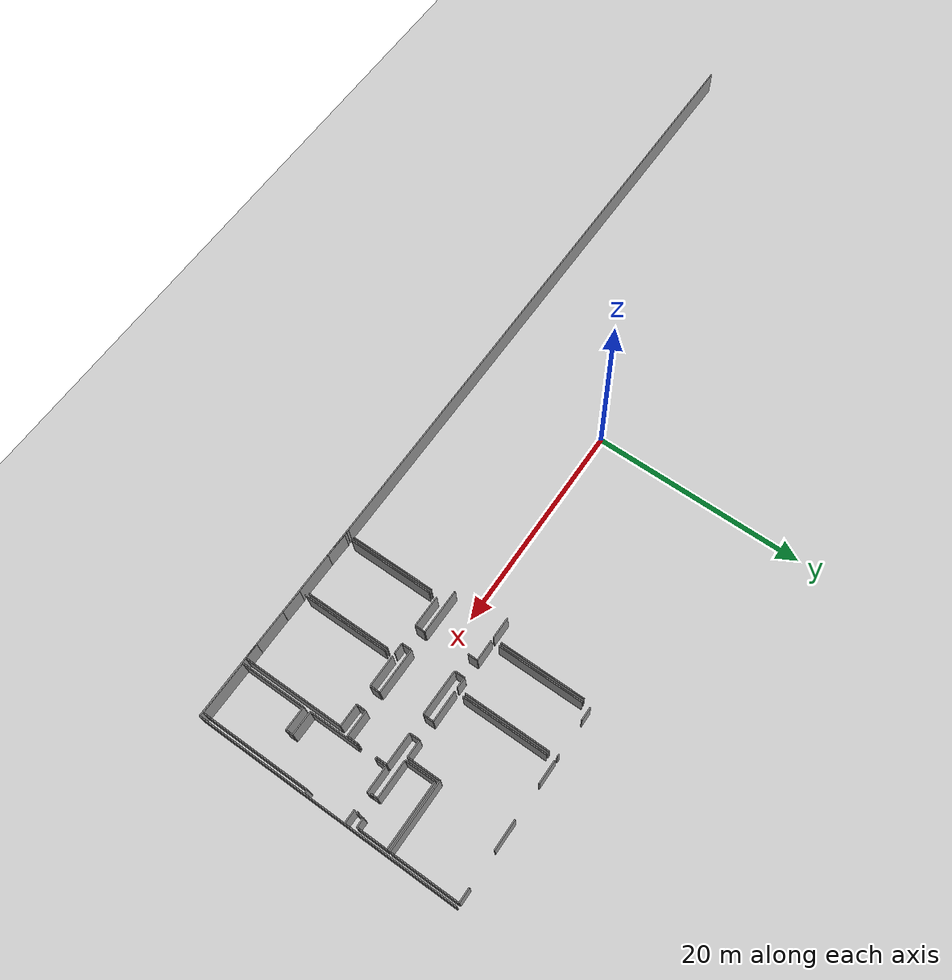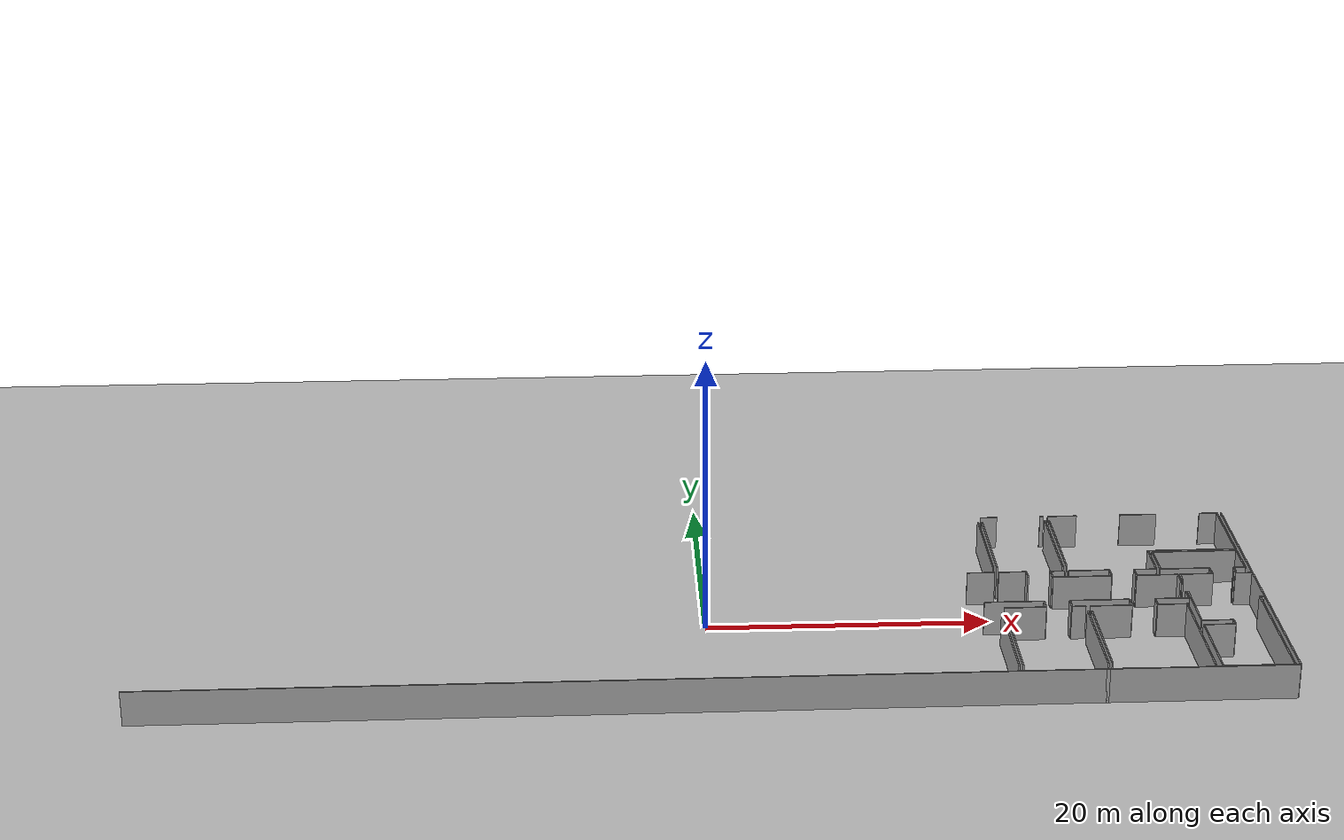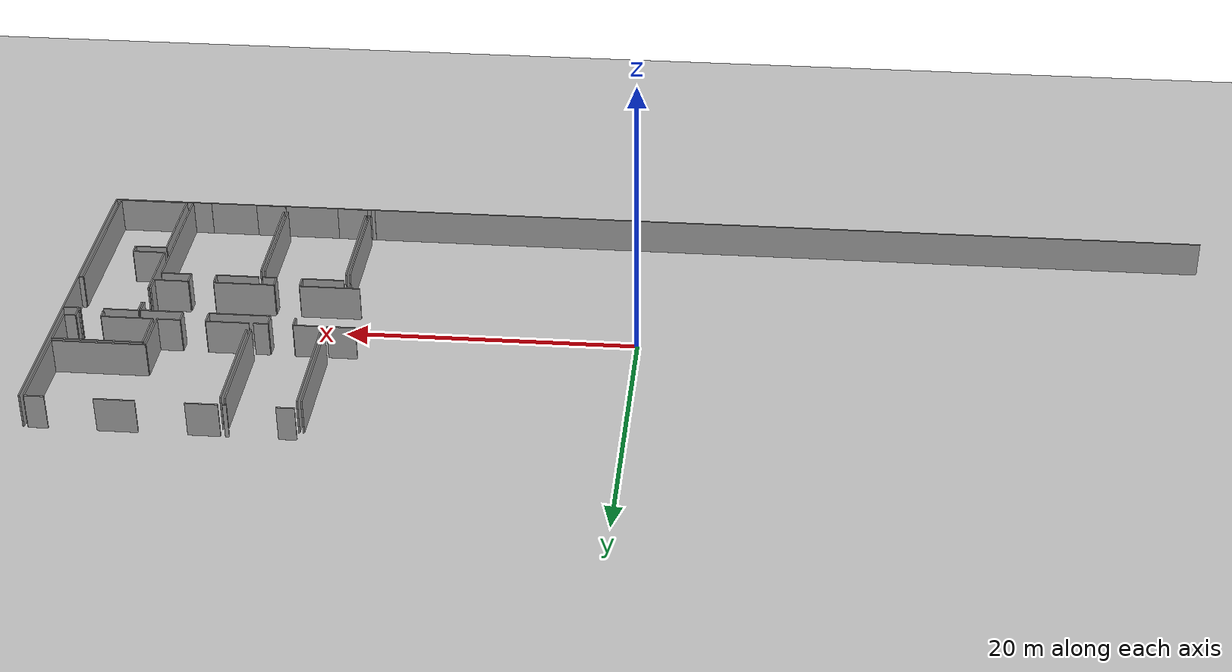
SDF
<sdf version="1.6">
 <world name="default">
  <model name="ground_plane">
   <static>1</static>
   <link name="link">
    <collision name="collision">
     <geometry><plane><normal>0 0 1</normal><size>100 100</size></plane></geometry>
     <surface><friction><ode><mu>100</mu><mu2>50</mu2></ode></friction></surface>
    </collision>
    <visual name="visual">
     <cast_shadows>0</cast_shadows>
     <geometry><plane><normal>0 0 1</normal><size>100 100</size></plane></geometry>
     <material>
      <script><uri>file://media/materials/scripts/gazebo.material</uri><name>Gazebo/Grey</name></script>
     </material>
    </visual>
   </link>
  </model>
  <model name="50052753">
   <static>1</static>
   <link name="Wall_146">
    <collision name="Wall_146_Collision">
     <geometry><box><size>8.08255583111 0.1 2.5</size></box></geometry>
     <pose>4.04127791555 0 1.25 0 0 0</pose>
    </collision>
    <visual name="Wall_146_Visual">
     <pose>4.04127791555 0 1.25 0 0 0</pose>
     <geometry><box><size>8.08255583111 0.1 2.5</size></box></geometry>
     <material>
      <script><uri>file://media/materials/scripts/gazebo.material</uri><name>Gazebo/Grey</name></script>
      <ambient>1 1 1 1</ambient>
     </material>
    </visual>
    <pose>59.7440109601 -0.784077430976 0 0 0 -1.57079632679</pose>
   </link>
   <link name="Wall_147">
    <collision name="Wall_147_Collision">
     <geometry><box><size>1.97662102078 0.1 2.5</size></box></geometry>
     <pose>0.988310510392 0 1.25 0 0 0</pose>
    </collision>
    <visual name="Wall_147_Visual">
     <pose>0.988310510392 0 1.25 0 0 0</pose>
     <geometry><box><size>1.97662102078 0.1 2.5</size></box></geometry>
     <material>
      <script><uri>file://media/materials/scripts/gazebo.material</uri><name>Gazebo/Grey</name></script>
      <ambient>1 1 1 1</ambient>
     </material>
    </visual>
    <pose>59.7440109601 -9.62090027464 0 0 0 3.14159265359</pose>
   </link>
   <link name="Wall_151">
    <collision name="Wall_151_Collision">
     <geometry><box><size>8.1108440154 0.1 2.5</size></box></geometry>
     <pose>4.0554220077 0 1.25 0 0 0</pose>
    </collision>
    <visual name="Wall_151_Visual">
     <pose>4.0554220077 0 1.25 0 0 0</pose>
     <geometry><box><size>8.1108440154 0.1 2.5</size></box></geometry>
     <material>
      <script><uri>file://media/materials/scripts/gazebo.material</uri><name>Gazebo/Grey</name></script>
      <ambient>1 1 1 1</ambient>
     </material>
    </visual>
    <pose>60.0375484419 -8.86878976044 0 0 0 1.57079632679</pose>
   </link>
   <link name="Wall_152">
    <collision name="Wall_152_Collision">
     <geometry><box><size>1.2185484229 0.1 2.5</size></box></geometry>
     <pose>0.609274211451 0 1.25 0 0 0</pose>
    </collision>
    <visual name="Wall_152_Visual">
     <pose>0.609274211451 0 1.25 0 0 0</pose>
     <geometry><box><size>1.2185484229 0.1 2.5</size></box></geometry>
     <material>
      <script><uri>file://media/materials/scripts/gazebo.material</uri><name>Gazebo/Grey</name></script>
      <ambient>1 1 1 1</ambient>
     </material>
    </visual>
    <pose>60.0375484419 -0.0181399567432 0 0 0 0.0</pose>
   </link>
   <link name="Wall_153">
    <collision name="Wall_153_Collision">
     <geometry><box><size>0.261063153689 0.1 2.5</size></box></geometry>
     <pose>0.130531576844 0 1.25 0 0 0</pose>
    </collision>
    <visual name="Wall_153_Visual">
     <pose>0.130531576844 0 1.25 0 0 0</pose>
     <geometry><box><size>0.261063153689 0.1 2.5</size></box></geometry>
     <material>
      <script><uri>file://media/materials/scripts/gazebo.material</uri><name>Gazebo/Grey</name></script>
      <ambient>1 1 1 1</ambient>
     </material>
    </visual>
    <pose>64.4836137838 -0.0181399567432 0 0 0 0.0</pose>
   </link>
   <link name="Wall_154">
    <collision name="Wall_154_Collision">
     <geometry><box><size>8.08648826928 0.1 2.5</size></box></geometry>
     <pose>4.04324413464 0 1.25 0 0 0</pose>
    </collision>
    <visual name="Wall_154_Visual">
     <pose>4.04324413464 0 1.25 0 0 0</pose>
     <geometry><box><size>8.08648826928 0.1 2.5</size></box></geometry>
     <material>
      <script><uri>file://media/materials/scripts/gazebo.material</uri><name>Gazebo/Grey</name></script>
      <ambient>1 1 1 1</ambient>
     </material>
    </visual>
    <pose>64.7446769375 -0.765176357167 0 0 0 -1.57079632679</pose>
   </link>
   <link name="Wall_155">
    <collision name="Wall_155_Collision">
     <geometry><box><size>1.00213747043 0.1 2.5</size></box></geometry>
     <pose>0.501068735214 0 1.25 0 0 0</pose>
    </collision>
    <visual name="Wall_155_Visual">
     <pose>0.501068735214 0 1.25 0 0 0</pose>
     <geometry><box><size>1.00213747043 0.1 2.5</size></box></geometry>
     <material>
      <script><uri>file://media/materials/scripts/gazebo.material</uri><name>Gazebo/Grey</name></script>
      <ambient>1 1 1 1</ambient>
     </material>
    </visual>
    <pose>64.7446769375 -9.62863829814 0 0 0 3.14159265359</pose>
   </link>
   <link name="Wall_156">
    <collision name="Wall_156_Collision">
     <geometry><box><size>0.885559706463 0.1 2.5</size></box></geometry>
     <pose>0.442779853231 0 1.25 0 0 0</pose>
    </collision>
    <visual name="Wall_156_Visual">
     <pose>0.442779853231 0 1.25 0 0 0</pose>
     <geometry><box><size>0.885559706463 0.1 2.5</size></box></geometry>
     <material>
      <script><uri>file://media/materials/scripts/gazebo.material</uri><name>Gazebo/Grey</name></script>
      <ambient>1 1 1 1</ambient>
     </material>
    </visual>
    <pose>63.7425394671 -9.62863829814 0 0 0 -1.57079632679</pose>
   </link>
   <link name="Wall_157">
    <collision name="Wall_157_Collision">
     <geometry><box><size>0.906870984315 0.1 2.5</size></box></geometry>
     <pose>0.453435492157 0 1.25 0 0 0</pose>
    </collision>
    <visual name="Wall_157_Visual">
     <pose>0.453435492157 0 1.25 0 0 0</pose>
     <geometry><box><size>0.906870984315 0.1 2.5</size></box></geometry>
     <material>
      <script><uri>file://media/materials/scripts/gazebo.material</uri><name>Gazebo/Grey</name></script>
      <ambient>1 1 1 1</ambient>
     </material>
    </visual>
    <pose>62.0144231684 -10.5141980046 0 0 0 1.57079632679</pose>
   </link>
   <link name="Wall_158">
    <collision name="Wall_158_Collision">
     <geometry><box><size>1.97698022137 0.1 2.5</size></box></geometry>
     <pose>0.988490110684 0 1.25 0 0 0</pose>
    </collision>
    <visual name="Wall_158_Visual">
     <pose>0.988490110684 0 1.25 0 0 0</pose>
     <geometry><box><size>1.97698022137 0.1 2.5</size></box></geometry>
     <material>
      <script><uri>file://media/materials/scripts/gazebo.material</uri><name>Gazebo/Grey</name></script>
      <ambient>1 1 1 1</ambient>
     </material>
    </visual>
    <pose>62.0144231684 -9.60732702029 0 0 0 -3.13126191229</pose>
   </link>
   <link name="Wall_159">
    <collision name="Wall_159_Collision">
     <geometry><box><size>8.0590880549 0.1 2.5</size></box></geometry>
     <pose>4.02954402745 0 1.25 0 0 0</pose>
    </collision>
    <visual name="Wall_159_Visual">
     <pose>4.02954402745 0 1.25 0 0 0</pose>
     <geometry><box><size>8.0590880549 0.1 2.5</size></box></geometry>
     <material>
      <script><uri>file://media/materials/scripts/gazebo.material</uri><name>Gazebo/Grey</name></script>
      <ambient>1 1 1 1</ambient>
     </material>
    </visual>
    <pose>65.0470941185 -8.85166462645 0 0 0 1.57079632679</pose>
   </link>
   <link name="Wall_160">
    <collision name="Wall_160_Collision">
     <geometry><box><size>2.17730222056 0.1 2.5</size></box></geometry>
     <pose>1.08865111028 0 1.25 0 0 0</pose>
    </collision>
    <visual name="Wall_160_Visual">
     <pose>1.08865111028 0 1.25 0 0 0</pose>
     <geometry><box><size>2.17730222056 0.1 2.5</size></box></geometry>
     <material>
      <script><uri>file://media/materials/scripts/gazebo.material</uri><name>Gazebo/Grey</name></script>
      <ambient>1 1 1 1</ambient>
     </material>
    </visual>
    <pose>65.0470941185 -0.0204233079416 0 0 0 0.0</pose>
   </link>
   <link name="Wall_161">
    <collision name="Wall_161_Collision">
     <geometry><box><size>2.72454539112 0.1 2.5</size></box></geometry>
     <pose>1.36227269556 0 1.25 0 0 0</pose>
    </collision>
    <visual name="Wall_161_Visual">
     <pose>1.36227269556 0 1.25 0 0 0</pose>
     <geometry><box><size>2.72454539112 0.1 2.5</size></box></geometry>
     <material>
      <script><uri>file://media/materials/scripts/gazebo.material</uri><name>Gazebo/Grey</name></script>
      <ambient>1 1 1 1</ambient>
     </material>
    </visual>
    <pose>70.484514439 -0.0204233079416 0 0 0 0.0</pose>
   </link>
   <link name="Wall_162">
    <collision name="Wall_162_Collision">
     <geometry><box><size>1.33068633731 0.1 2.5</size></box></geometry>
     <pose>0.665343168657 0 1.25 0 0 0</pose>
    </collision>
    <visual name="Wall_162_Visual">
     <pose>0.665343168657 0 1.25 0 0 0</pose>
     <geometry><box><size>1.33068633731 0.1 2.5</size></box></geometry>
     <material>
      <script><uri>file://media/materials/scripts/gazebo.material</uri><name>Gazebo/Grey</name></script>
      <ambient>1 1 1 1</ambient>
     </material>
    </visual>
    <pose>76.4507842677 -0.0204233079416 0 0 0 0.0</pose>
   </link>
   <link name="Wall_163">
    <collision name="Wall_163_Collision">
     <geometry><box><size>6.45452642662 0.1 2.5</size></box></geometry>
     <pose>3.22726321331 0 1.25 0 0 0</pose>
    </collision>
    <visual name="Wall_163_Visual">
     <pose>3.22726321331 0 1.25 0 0 0</pose>
     <geometry><box><size>6.45452642662 0.1 2.5</size></box></geometry>
     <material>
      <script><uri>file://media/materials/scripts/gazebo.material</uri><name>Gazebo/Grey</name></script>
      <ambient>1 1 1 1</ambient>
     </material>
    </visual>
    <pose>77.781470605 -0.0204233079416 0 0 0 -1.57079632679</pose>
   </link>
   <link name="Wall_164">
    <collision name="Wall_164_Collision">
     <geometry><box><size>6.41710483753 0.1 2.5</size></box></geometry>
     <pose>3.20855241877 0 1.25 0 0 0</pose>
    </collision>
    <visual name="Wall_164_Visual">
     <pose>3.20855241877 0 1.25 0 0 0</pose>
     <geometry><box><size>6.41710483753 0.1 2.5</size></box></geometry>
     <material>
      <script><uri>file://media/materials/scripts/gazebo.material</uri><name>Gazebo/Grey</name></script>
      <ambient>1 1 1 1</ambient>
     </material>
    </visual>
    <pose>77.781470605 -6.47494973456 0 0 0 3.14159265359</pose>
   </link>
   <link name="Wall_165">
    <collision name="Wall_165_Collision">
     <geometry><box><size>3.15280059367 0.1 2.5</size></box></geometry>
     <pose>1.57640029684 0 1.25 0 0 0</pose>
    </collision>
    <visual name="Wall_165_Visual">
     <pose>1.57640029684 0 1.25 0 0 0</pose>
     <geometry><box><size>3.15280059367 0.1 2.5</size></box></geometry>
     <material>
      <script><uri>file://media/materials/scripts/gazebo.material</uri><name>Gazebo/Grey</name></script>
      <ambient>1 1 1 1</ambient>
     </material>
    </visual>
    <pose>71.3643657675 -6.47494973456 0 0 0 -1.57079632679</pose>
   </link>
   <link name="Wall_166">
    <collision name="Wall_166_Collision">
     <geometry><box><size>1.59885325029 0.1 2.5</size></box></geometry>
     <pose>0.799426625144 0 1.25 0 0 0</pose>
    </collision>
    <visual name="Wall_166_Visual">
     <pose>0.799426625144 0 1.25 0 0 0</pose>
     <geometry><box><size>1.59885325029 0.1 2.5</size></box></geometry>
     <material>
      <script><uri>file://media/materials/scripts/gazebo.material</uri><name>Gazebo/Grey</name></script>
      <ambient>1 1 1 1</ambient>
     </material>
    </visual>
    <pose>71.3643657675 -9.62775032823 0 0 0 3.14159265359</pose>
   </link>
   <link name="Wall_167">
    <collision name="Wall_167_Collision">
     <geometry><box><size>0.887716204817 0.1 2.5</size></box></geometry>
     <pose>0.443858102408 0 1.25 0 0 0</pose>
    </collision>
    <visual name="Wall_167_Visual">
     <pose>0.443858102408 0 1.25 0 0 0</pose>
     <geometry><box><size>0.887716204817 0.1 2.5</size></box></geometry>
     <material>
      <script><uri>file://media/materials/scripts/gazebo.material</uri><name>Gazebo/Grey</name></script>
      <ambient>1 1 1 1</ambient>
     </material>
    </visual>
    <pose>69.7655125172 -9.62775032823 0 0 0 -1.57079632679</pose>
   </link>
   <link name="Wall_168">
    <collision name="Wall_168_Collision">
     <geometry><box><size>0.904968191649 0.1 2.5</size></box></geometry>
     <pose>0.452484095825 0 1.25 0 0 0</pose>
    </collision>
    <visual name="Wall_168_Visual">
     <pose>0.452484095825 0 1.25 0 0 0</pose>
     <geometry><box><size>0.904968191649 0.1 2.5</size></box></geometry>
     <material>
      <script><uri>file://media/materials/scripts/gazebo.material</uri><name>Gazebo/Grey</name></script>
      <ambient>1 1 1 1</ambient>
     </material>
    </visual>
    <pose>67.9995940709 -10.515466533 0 0 0 1.57079632679</pose>
   </link>
   <link name="Wall_169">
    <collision name="Wall_169_Collision">
     <geometry><box><size>2.95255567723 0.1 2.5</size></box></geometry>
     <pose>1.47627783861 0 1.25 0 0 0</pose>
    </collision>
    <visual name="Wall_169_Visual">
     <pose>1.47627783861 0 1.25 0 0 0</pose>
     <geometry><box><size>2.95255567723 0.1 2.5</size></box></geometry>
     <material>
      <script><uri>file://media/materials/scripts/gazebo.material</uri><name>Gazebo/Grey</name></script>
      <ambient>1 1 1 1</ambient>
     </material>
    </visual>
    <pose>67.9995940709 -9.6104983414 0 0 0 -3.13544879964</pose>
   </link>
   <link name="Wall_170">
    <collision name="Wall_170_Collision">
     <geometry><box><size>3.54084344456 0.1 2.5</size></box></geometry>
     <pose>1.77042172228 0 1.25 0 0 0</pose>
    </collision>
    <visual name="Wall_170_Visual">
     <pose>1.77042172228 0 1.25 0 0 0</pose>
     <geometry><box><size>3.54084344456 0.1 2.5</size></box></geometry>
     <material>
      <script><uri>file://media/materials/scripts/gazebo.material</uri><name>Gazebo/Grey</name></script>
      <ambient>1 1 1 1</ambient>
     </material>
    </visual>
    <pose>71.6563810152 -9.63916708422 0 0 0 0.0</pose>
   </link>
   <link name="Wall_171">
    <collision name="Wall_171_Collision">
     <geometry><box><size>0.649359710268 0.1 2.5</size></box></geometry>
     <pose>0.324679855134 0 1.25 0 0 0</pose>
    </collision>
    <visual name="Wall_171_Visual">
     <pose>0.324679855134 0 1.25 0 0 0</pose>
     <geometry><box><size>0.649359710268 0.1 2.5</size></box></geometry>
     <material>
      <script><uri>file://media/materials/scripts/gazebo.material</uri><name>Gazebo/Grey</name></script>
      <ambient>1 1 1 1</ambient>
     </material>
    </visual>
    <pose>75.1972244598 -9.63916708422 0 0 0 -1.57079632679</pose>
   </link>
   <link name="Wall_172">
    <collision name="Wall_172_Collision">
     <geometry><box><size>0.0867673455408 0.1 2.5</size></box></geometry>
     <pose>0.0433836727704 0 1.25 0 0 0</pose>
    </collision>
    <visual name="Wall_172_Visual">
     <pose>0.0433836727704 0 1.25 0 0 0</pose>
     <geometry><box><size>0.0867673455408 0.1 2.5</size></box></geometry>
     <material>
      <script><uri>file://media/materials/scripts/gazebo.material</uri><name>Gazebo/Grey</name></script>
      <ambient>1 1 1 1</ambient>
     </material>
    </visual>
    <pose>75.1972244598 -10.2885267945 0 0 0 0.0</pose>
   </link>
   <link name="Wall_173">
    <collision name="Wall_173_Collision">
     <geometry><box><size>0.144992801101 0.1 2.5</size></box></geometry>
     <pose>0.0724964005505 0 1.25 0 0 0</pose>
    </collision>
    <visual name="Wall_173_Visual">
     <pose>0.0724964005505 0 1.25 0 0 0</pose>
     <geometry><box><size>0.144992801101 0.1 2.5</size></box></geometry>
     <material>
      <script><uri>file://media/materials/scripts/gazebo.material</uri><name>Gazebo/Grey</name></script>
      <ambient>1 1 1 1</ambient>
     </material>
    </visual>
    <pose>76.8206871619 -10.2885267945 0 0 0 0.0</pose>
   </link>
   <link name="Wall_174">
    <collision name="Wall_174_Collision">
     <geometry><box><size>0.653165295599 0.1 2.5</size></box></geometry>
     <pose>0.326582647799 0 1.25 0 0 0</pose>
    </collision>
    <visual name="Wall_174_Visual">
     <pose>0.326582647799 0 1.25 0 0 0</pose>
     <geometry><box><size>0.653165295599 0.1 2.5</size></box></geometry>
     <material>
      <script><uri>file://media/materials/scripts/gazebo.material</uri><name>Gazebo/Grey</name></script>
      <ambient>1 1 1 1</ambient>
     </material>
    </visual>
    <pose>76.965679963 -10.2885267945 0 0 0 1.57079632679</pose>
   </link>
   <link name="Wall_175">
    <collision name="Wall_175_Collision">
     <geometry><box><size>0.812365615268 0.1 2.5</size></box></geometry>
     <pose>0.406182807634 0 1.25 0 0 0</pose>
    </collision>
    <visual name="Wall_175_Visual">
     <pose>0.406182807634 0 1.25 0 0 0</pose>
     <geometry><box><size>0.812365615268 0.1 2.5</size></box></geometry>
     <material>
      <script><uri>file://media/materials/scripts/gazebo.material</uri><name>Gazebo/Grey</name></script>
      <ambient>1 1 1 1</ambient>
     </material>
    </visual>
    <pose>76.965679963 -9.63536149889 0 0 0 0.0</pose>
   </link>
   <link name="Wall_176">
    <collision name="Wall_176_Collision">
     <geometry><box><size>2.88666332621 0.1 2.5</size></box></geometry>
     <pose>1.4433316631 0 1.25 0 0 0</pose>
    </collision>
    <visual name="Wall_176_Visual">
     <pose>1.4433316631 0 1.25 0 0 0</pose>
     <geometry><box><size>2.88666332621 0.1 2.5</size></box></geometry>
     <material>
      <script><uri>file://media/materials/scripts/gazebo.material</uri><name>Gazebo/Grey</name></script>
      <ambient>1 1 1 1</ambient>
     </material>
    </visual>
    <pose>77.7780455782 -9.63536149889 0 0 0 1.57079632679</pose>
   </link>
   <link name="Wall_177">
    <collision name="Wall_177_Collision">
     <geometry><box><size>6.15046015869 0.1 2.5</size></box></geometry>
     <pose>3.07523007935 0 1.25 0 0 0</pose>
    </collision>
    <visual name="Wall_177_Visual">
     <pose>3.07523007935 0 1.25 0 0 0</pose>
     <geometry><box><size>6.15046015869 0.1 2.5</size></box></geometry>
     <material>
      <script><uri>file://media/materials/scripts/gazebo.material</uri><name>Gazebo/Grey</name></script>
      <ambient>1 1 1 1</ambient>
     </material>
    </visual>
    <pose>77.7780455782 -6.74869817268 0 0 0 3.14159265359</pose>
   </link>
   <link name="Wall_178">
    <collision name="Wall_178_Collision">
     <geometry><box><size>2.89061234255 0.1 2.5</size></box></geometry>
     <pose>1.44530617128 0 1.25 0 0 0</pose>
    </collision>
    <visual name="Wall_178_Visual">
     <pose>1.44530617128 0 1.25 0 0 0</pose>
     <geometry><box><size>2.89061234255 0.1 2.5</size></box></geometry>
     <material>
      <script><uri>file://media/materials/scripts/gazebo.material</uri><name>Gazebo/Grey</name></script>
      <ambient>1 1 1 1</ambient>
     </material>
    </visual>
    <pose>71.6275854195 -6.74869817268 0 0 0 -1.56083439882</pose>
   </link>
   <link name="Wall_179">
    <collision name="Wall_179_Collision">
     <geometry><box><size>4.84387586181 0.1 2.5</size></box></geometry>
     <pose>2.4219379309 0 1.25 0 0 0</pose>
    </collision>
    <visual name="Wall_179_Visual">
     <pose>2.4219379309 0 1.25 0 0 0</pose>
     <geometry><box><size>4.84387586181 0.1 2.5</size></box></geometry>
     <material>
      <script><uri>file://media/materials/scripts/gazebo.material</uri><name>Gazebo/Grey</name></script>
      <ambient>1 1 1 1</ambient>
     </material>
    </visual>
    <pose>72.8931962477 -25.0044715628 0 0 0 0.0</pose>
   </link>
   <link name="Wall_180">
    <collision name="Wall_180_Collision">
     <geometry><box><size>10.522823998 0.1 2.5</size></box></geometry>
     <pose>5.26141199901 0 1.25 0 0 0</pose>
    </collision>
    <visual name="Wall_180_Visual">
     <pose>5.26141199901 0 1.25 0 0 0</pose>
     <geometry><box><size>10.522823998 0.1 2.5</size></box></geometry>
     <material>
      <script><uri>file://media/materials/scripts/gazebo.material</uri><name>Gazebo/Grey</name></script>
      <ambient>1 1 1 1</ambient>
     </material>
    </visual>
    <pose>77.7370721095 -25.0044715628 0 0 0 1.57079632679</pose>
   </link>
   <link name="Wall_181">
    <collision name="Wall_181_Collision">
     <geometry><box><size>0.361150047887 0.1 2.5</size></box></geometry>
     <pose>0.180575023943 0 1.25 0 0 0</pose>
    </collision>
    <visual name="Wall_181_Visual">
     <pose>0.180575023943 0 1.25 0 0 0</pose>
     <geometry><box><size>0.361150047887 0.1 2.5</size></box></geometry>
     <material>
      <script><uri>file://media/materials/scripts/gazebo.material</uri><name>Gazebo/Grey</name></script>
      <ambient>1 1 1 1</ambient>
     </material>
    </visual>
    <pose>77.7370721095 -14.4816475647 0 0 0 0.0</pose>
   </link>
   <link name="Wall_182">
    <collision name="Wall_182_Collision">
     <geometry><box><size>1.22895035614 0.1 2.5</size></box></geometry>
     <pose>0.61447517807 0 1.25 0 0 0</pose>
    </collision>
    <visual name="Wall_182_Visual">
     <pose>0.61447517807 0 1.25 0 0 0</pose>
     <geometry><box><size>1.22895035614 0.1 2.5</size></box></geometry>
     <material>
      <script><uri>file://media/materials/scripts/gazebo.material</uri><name>Gazebo/Grey</name></script>
      <ambient>1 1 1 1</ambient>
     </material>
    </visual>
    <pose>78.0982221574 -10.5786392495 0 0 0 3.14159265359</pose>
   </link>
   <link name="Wall_183">
    <collision name="Wall_183_Collision">
     <geometry><box><size>2.41718094924 0.1 2.5</size></box></geometry>
     <pose>1.20859047462 0 1.25 0 0 0</pose>
    </collision>
    <visual name="Wall_183_Visual">
     <pose>1.20859047462 0 1.25 0 0 0</pose>
     <geometry><box><size>2.41718094924 0.1 2.5</size></box></geometry>
     <material>
      <script><uri>file://media/materials/scripts/gazebo.material</uri><name>Gazebo/Grey</name></script>
      <ambient>1 1 1 1</ambient>
     </material>
    </visual>
    <pose>75.2912224174 -10.5786392495 0 0 0 3.14159265359</pose>
   </link>
   <link name="Wall_184">
    <collision name="Wall_184_Collision">
     <geometry><box><size>1.06074348452 0.1 2.5</size></box></geometry>
     <pose>0.53037174226 0 1.25 0 0 0</pose>
    </collision>
    <visual name="Wall_184_Visual">
     <pose>0.53037174226 0 1.25 0 0 0</pose>
     <geometry><box><size>1.06074348452 0.1 2.5</size></box></geometry>
     <material>
      <script><uri>file://media/materials/scripts/gazebo.material</uri><name>Gazebo/Grey</name></script>
      <ambient>1 1 1 1</ambient>
     </material>
    </visual>
    <pose>72.8740414682 -10.5786392495 0 0 0 -1.57079632679</pose>
   </link>
   <link name="Wall_185">
    <collision name="Wall_185_Collision">
     <geometry><box><size>4.69533118106 0.1 2.5</size></box></geometry>
     <pose>2.34766559053 0 1.25 0 0 0</pose>
    </collision>
    <visual name="Wall_185_Visual">
     <pose>2.34766559053 0 1.25 0 0 0</pose>
     <geometry><box><size>4.69533118106 0.1 2.5</size></box></geometry>
     <material>
      <script><uri>file://media/materials/scripts/gazebo.material</uri><name>Gazebo/Grey</name></script>
      <ambient>1 1 1 1</ambient>
     </material>
    </visual>
    <pose>72.8740414682 -13.393377013 0 0 0 -1.57079632679</pose>
   </link>
   <link name="Wall_186">
    <collision name="Wall_186_Collision">
     <geometry><box><size>2.22525259573 0.1 2.5</size></box></geometry>
     <pose>1.11262629786 0 1.25 0 0 0</pose>
    </collision>
    <visual name="Wall_186_Visual">
     <pose>1.11262629786 0 1.25 0 0 0</pose>
     <geometry><box><size>2.22525259573 0.1 2.5</size></box></geometry>
     <material>
      <script><uri>file://media/materials/scripts/gazebo.material</uri><name>Gazebo/Grey</name></script>
      <ambient>1 1 1 1</ambient>
     </material>
    </visual>
    <pose>72.8740414682 -18.0887081941 0 0 0 0.0</pose>
   </link>
   <link name="Wall_187">
    <collision name="Wall_187_Collision">
     <geometry><box><size>0.671432105186 0.1 2.5</size></box></geometry>
     <pose>0.335716052593 0 1.25 0 0 0</pose>
    </collision>
    <visual name="Wall_187_Visual">
     <pose>0.335716052593 0 1.25 0 0 0</pose>
     <geometry><box><size>0.671432105186 0.1 2.5</size></box></geometry>
     <material>
      <script><uri>file://media/materials/scripts/gazebo.material</uri><name>Gazebo/Grey</name></script>
      <ambient>1 1 1 1</ambient>
     </material>
    </visual>
    <pose>75.0992940639 -18.0887081941 0 0 0 -1.57079632679</pose>
   </link>
   <link name="Wall_188">
    <collision name="Wall_188_Collision">
     <geometry><box><size>2.20609781623 0.1 2.5</size></box></geometry>
     <pose>1.10304890811 0 1.25 0 0 0</pose>
    </collision>
    <visual name="Wall_188_Visual">
     <pose>1.10304890811 0 1.25 0 0 0</pose>
     <geometry><box><size>2.20609781623 0.1 2.5</size></box></geometry>
     <material>
      <script><uri>file://media/materials/scripts/gazebo.material</uri><name>Gazebo/Grey</name></script>
      <ambient>1 1 1 1</ambient>
     </material>
    </visual>
    <pose>75.0992940639 -18.7601402992 0 0 0 3.14159265359</pose>
   </link>
   <link name="Wall_189">
    <collision name="Wall_189_Collision">
     <geometry><box><size>6.24433126352 0.1 2.5</size></box></geometry>
     <pose>3.12216563176 0 1.25 0 0 0</pose>
    </collision>
    <visual name="Wall_189_Visual">
     <pose>3.12216563176 0 1.25 0 0 0</pose>
     <geometry><box><size>6.24433126352 0.1 2.5</size></box></geometry>
     <material>
      <script><uri>file://media/materials/scripts/gazebo.material</uri><name>Gazebo/Grey</name></script>
      <ambient>1 1 1 1</ambient>
     </material>
    </visual>
    <pose>72.8931962477 -18.7601402992 0 0 0 -1.57079632679</pose>
   </link>
   <link name="Wall_190">
    <collision name="Wall_190_Collision">
     <geometry><box><size>8.07608633605 0.1 2.5</size></box></geometry>
     <pose>4.03804316802 0 1.25 0 0 0</pose>
    </collision>
    <visual name="Wall_190_Visual">
     <pose>4.03804316802 0 1.25 0 0 0</pose>
     <geometry><box><size>8.07608633605 0.1 2.5</size></box></geometry>
     <material>
      <script><uri>file://media/materials/scripts/gazebo.material</uri><name>Gazebo/Grey</name></script>
      <ambient>1 1 1 1</ambient>
     </material>
    </visual>
    <pose>65.5925613492 -24.2825520255 0 0 0 1.57079632679</pose>
   </link>
   <link name="Wall_191">
    <collision name="Wall_191_Collision">
     <geometry><box><size>2.9598574174 0.1 2.5</size></box></geometry>
     <pose>1.4799287087 0 1.25 0 0 0</pose>
    </collision>
    <visual name="Wall_191_Visual">
     <pose>1.4799287087 0 1.25 0 0 0</pose>
     <geometry><box><size>2.9598574174 0.1 2.5</size></box></geometry>
     <material>
      <script><uri>file://media/materials/scripts/gazebo.material</uri><name>Gazebo/Grey</name></script>
      <ambient>1 1 1 1</ambient>
     </material>
    </visual>
    <pose>65.5925613492 -15.4449680648 0 0 0 0.0</pose>
   </link>
   <link name="Wall_192">
    <collision name="Wall_192_Collision">
     <geometry><box><size>0.872493863494 0.1 2.5</size></box></geometry>
     <pose>0.436246931747 0 1.25 0 0 0</pose>
    </collision>
    <visual name="Wall_192_Visual">
     <pose>0.436246931747 0 1.25 0 0 0</pose>
     <geometry><box><size>0.872493863494 0.1 2.5</size></box></geometry>
     <material>
      <script><uri>file://media/materials/scripts/gazebo.material</uri><name>Gazebo/Grey</name></script>
      <ambient>1 1 1 1</ambient>
     </material>
    </visual>
    <pose>68.5524187666 -15.4449680648 0 0 0 1.57079632679</pose>
   </link>
   <link name="Wall_193">
    <collision name="Wall_193_Collision">
     <geometry><box><size>0.849787204354 0.1 2.5</size></box></geometry>
     <pose>0.424893602177 0 1.25 0 0 0</pose>
    </collision>
    <visual name="Wall_193_Visual">
     <pose>0.424893602177 0 1.25 0 0 0</pose>
     <geometry><box><size>0.849787204354 0.1 2.5</size></box></geometry>
     <material>
      <script><uri>file://media/materials/scripts/gazebo.material</uri><name>Gazebo/Grey</name></script>
      <ambient>1 1 1 1</ambient>
     </material>
    </visual>
    <pose>70.3457374273 -14.5724742013 0 0 0 -1.57079632679</pose>
   </link>
   <link name="Wall_194">
    <collision name="Wall_194_Collision">
     <geometry><box><size>2.08127461738 0.1 2.5</size></box></geometry>
     <pose>1.04063730869 0 1.25 0 0 0</pose>
    </collision>
    <visual name="Wall_194_Visual">
     <pose>1.04063730869 0 1.25 0 0 0</pose>
     <geometry><box><size>2.08127461738 0.1 2.5</size></box></geometry>
     <material>
      <script><uri>file://media/materials/scripts/gazebo.material</uri><name>Gazebo/Grey</name></script>
      <ambient>1 1 1 1</ambient>
     </material>
    </visual>
    <pose>70.3457374273 -15.4222614057 0 0 0 0.0</pose>
   </link>
   <link name="Wall_195">
    <collision name="Wall_195_Collision">
     <geometry><box><size>9.64931531177 0.1 2.5</size></box></geometry>
     <pose>4.82465765589 0 1.25 0 0 0</pose>
    </collision>
    <visual name="Wall_195_Visual">
     <pose>4.82465765589 0 1.25 0 0 0</pose>
     <geometry><box><size>9.64931531177 0.1 2.5</size></box></geometry>
     <material>
      <script><uri>file://media/materials/scripts/gazebo.material</uri><name>Gazebo/Grey</name></script>
      <ambient>1 1 1 1</ambient>
     </material>
    </visual>
    <pose>72.4270120447 -15.4222614057 0 0 0 -1.57079632679</pose>
   </link>
   <link name="Wall_196">
    <collision name="Wall_196_Collision">
     <geometry><box><size>1.35631061187 0.1 2.5</size></box></geometry>
     <pose>0.678155305937 0 1.25 0 0 0</pose>
    </collision>
    <visual name="Wall_196_Visual">
     <pose>0.678155305937 0 1.25 0 0 0</pose>
     <geometry><box><size>1.35631061187 0.1 2.5</size></box></geometry>
     <material>
      <script><uri>file://media/materials/scripts/gazebo.material</uri><name>Gazebo/Grey</name></script>
      <ambient>1 1 1 1</ambient>
     </material>
    </visual>
    <pose>72.4270120447 -25.0715767174 0 0 0 3.14159265359</pose>
   </link>
   <link name="Wall_197">
    <collision name="Wall_197_Collision">
     <geometry><box><size>2.16127416815 0.1 2.5</size></box></geometry>
     <pose>1.08063708407 0 1.25 0 0 0</pose>
    </collision>
    <visual name="Wall_197_Visual">
     <pose>1.08063708407 0 1.25 0 0 0</pose>
     <geometry><box><size>2.16127416815 0.1 2.5</size></box></geometry>
     <material>
      <script><uri>file://media/materials/scripts/gazebo.material</uri><name>Gazebo/Grey</name></script>
      <ambient>1 1 1 1</ambient>
     </material>
    </visual>
    <pose>67.7536264057 -25.0715767174 0 0 0 3.12768183459</pose>
   </link>
   <link name="Wall_198">
    <collision name="Wall_198_Collision">
     <geometry><box><size>8.06555754996 0.1 2.5</size></box></geometry>
     <pose>4.03277877498 0 1.25 0 0 0</pose>
    </collision>
    <visual name="Wall_198_Visual">
     <pose>4.03277877498 0 1.25 0 0 0</pose>
     <geometry><box><size>8.06555754996 0.1 2.5</size></box></geometry>
     <material>
      <script><uri>file://media/materials/scripts/gazebo.material</uri><name>Gazebo/Grey</name></script>
      <ambient>1 1 1 1</ambient>
     </material>
    </visual>
    <pose>59.6038385671 -24.2741797378 0 0 0 1.57079632679</pose>
   </link>
   <link name="Wall_199">
    <collision name="Wall_199_Collision">
     <geometry><box><size>2.92763679494 0.1 2.5</size></box></geometry>
     <pose>1.46381839747 0 1.25 0 0 0</pose>
    </collision>
    <visual name="Wall_199_Visual">
     <pose>1.46381839747 0 1.25 0 0 0</pose>
     <geometry><box><size>2.92763679494 0.1 2.5</size></box></geometry>
     <material>
      <script><uri>file://media/materials/scripts/gazebo.material</uri><name>Gazebo/Grey</name></script>
      <ambient>1 1 1 1</ambient>
     </material>
    </visual>
    <pose>59.6038385671 -15.44966162 0 0 0 0.0</pose>
   </link>
   <link name="Wall_200">
    <collision name="Wall_200_Collision">
     <geometry><box><size>0.892536612902 0.1 2.5</size></box></geometry>
     <pose>0.446268306451 0 1.25 0 0 0</pose>
    </collision>
    <visual name="Wall_200_Visual">
     <pose>0.446268306451 0 1.25 0 0 0</pose>
     <geometry><box><size>0.892536612902 0.1 2.5</size></box></geometry>
     <material>
      <script><uri>file://media/materials/scripts/gazebo.material</uri><name>Gazebo/Grey</name></script>
      <ambient>1 1 1 1</ambient>
     </material>
    </visual>
    <pose>62.531475362 -15.44966162 0 0 0 1.57079632679</pose>
   </link>
   <link name="Wall_201">
    <collision name="Wall_201_Collision">
     <geometry><box><size>0.892536612902 0.1 2.5</size></box></geometry>
     <pose>0.446268306451 0 1.25 0 0 0</pose>
    </collision>
    <visual name="Wall_201_Visual">
     <pose>0.446268306451 0 1.25 0 0 0</pose>
     <geometry><box><size>0.892536612902 0.1 2.5</size></box></geometry>
     <material>
      <script><uri>file://media/materials/scripts/gazebo.material</uri><name>Gazebo/Grey</name></script>
      <ambient>1 1 1 1</ambient>
     </material>
    </visual>
    <pose>64.3330394576 -14.5571250071 0 0 0 -1.57079632679</pose>
   </link>
   <link name="Wall_202">
    <collision name="Wall_202_Collision">
     <geometry><box><size>0.975878931645 0.1 2.5</size></box></geometry>
     <pose>0.487939465823 0 1.25 0 0 0</pose>
    </collision>
    <visual name="Wall_202_Visual">
     <pose>0.487939465823 0 1.25 0 0 0</pose>
     <geometry><box><size>0.975878931645 0.1 2.5</size></box></geometry>
     <material>
      <script><uri>file://media/materials/scripts/gazebo.material</uri><name>Gazebo/Grey</name></script>
      <ambient>1 1 1 1</ambient>
     </material>
    </visual>
    <pose>64.3330394576 -15.44966162 0 0 0 0.0</pose>
   </link>
   <link name="Wall_203">
    <collision name="Wall_203_Collision">
     <geometry><box><size>8.09435314563 0.1 2.5</size></box></geometry>
     <pose>4.04717657282 0 1.25 0 0 0</pose>
    </collision>
    <visual name="Wall_203_Visual">
     <pose>4.04717657282 0 1.25 0 0 0</pose>
     <geometry><box><size>8.09435314563 0.1 2.5</size></box></geometry>
     <material>
      <script><uri>file://media/materials/scripts/gazebo.material</uri><name>Gazebo/Grey</name></script>
      <ambient>1 1 1 1</ambient>
     </material>
    </visual>
    <pose>65.3089183892 -16.2002499001 0 0 0 -1.57079632679</pose>
   </link>
   <link name="Wall_204">
    <collision name="Wall_204_Collision">
     <geometry><box><size>0.252310307428 0.1 2.5</size></box></geometry>
     <pose>0.126155153714 0 1.25 0 0 0</pose>
    </collision>
    <visual name="Wall_204_Visual">
     <pose>0.126155153714 0 1.25 0 0 0</pose>
     <geometry><box><size>0.252310307428 0.1 2.5</size></box></geometry>
     <material>
      <script><uri>file://media/materials/scripts/gazebo.material</uri><name>Gazebo/Grey</name></script>
      <ambient>1 1 1 1</ambient>
     </material>
    </visual>
    <pose>65.3089183892 -25.0812175336 0 0 0 3.14159265359</pose>
   </link>
   <link name="Wall_205">
    <collision name="Wall_205_Collision">
     <geometry><box><size>2.19038834358 0.1 2.5</size></box></geometry>
     <pose>1.09519417179 0 1.25 0 0 0</pose>
    </collision>
    <visual name="Wall_205_Visual">
     <pose>1.09519417179 0 1.25 0 0 0</pose>
     <geometry><box><size>2.19038834358 0.1 2.5</size></box></geometry>
     <material>
      <script><uri>file://media/materials/scripts/gazebo.material</uri><name>Gazebo/Grey</name></script>
      <ambient>1 1 1 1</ambient>
     </material>
    </visual>
    <pose>61.7936992192 -25.0812175336 0 0 0 3.11964171082</pose>
   </link>
   <link name="Wall_211">
    <collision name="Wall_211_Collision">
     <geometry><box><size>8.10272543336 0.1 2.5</size></box></geometry>
     <pose>4.05136271668 0 1.25 0 0 0</pose>
    </collision>
    <visual name="Wall_211_Visual">
     <pose>4.05136271668 0 1.25 0 0 0</pose>
     <geometry><box><size>8.10272543336 0.1 2.5</size></box></geometry>
     <material>
      <script><uri>file://media/materials/scripts/gazebo.material</uri><name>Gazebo/Grey</name></script>
      <ambient>1 1 1 1</ambient>
     </material>
    </visual>
    <pose>59.3276799249 -16.1979665489 0 0 0 -1.57079632679</pose>
   </link>
   <link name="Wall_212">
    <collision name="Wall_212_Collision">
     <geometry><box><size>0.254720511471 0.1 2.5</size></box></geometry>
     <pose>0.127360255735 0 1.25 0 0 0</pose>
    </collision>
    <visual name="Wall_212_Visual">
     <pose>0.127360255735 0 1.25 0 0 0</pose>
     <geometry><box><size>0.254720511471 0.1 2.5</size></box></geometry>
     <material>
      <script><uri>file://media/materials/scripts/gazebo.material</uri><name>Gazebo/Grey</name></script>
      <ambient>1 1 1 1</ambient>
     </material>
    </visual>
    <pose>59.3276799249 -25.0621896069 0 0 0 3.14159265359</pose>
   </link>
   <link name="Wall_255">
    <collision name="Wall_255_Collision">
     <geometry><box><size>4.18652442234 0.1 2.5</size></box></geometry>
     <pose>2.09326221117 0 1.25 0 0 0</pose>
    </collision>
    <visual name="Wall_255_Visual">
     <pose>2.09326221117 0 1.25 0 0 0</pose>
     <geometry><box><size>4.18652442234 0.1 2.5</size></box></geometry>
     <material>
      <script><uri>file://media/materials/scripts/gazebo.material</uri><name>Gazebo/Grey</name></script>
      <ambient>1 1 1 1</ambient>
     </material>
    </visual>
    <pose>63.791504665 -10.6073079924 0 0 0 0.0</pose>
   </link>
   <link name="Wall_256">
    <collision name="Wall_256_Collision">
     <geometry><box><size>2.95567127354 0.1 2.5</size></box></geometry>
     <pose>1.47783563677 0 1.25 0 0 0</pose>
    </collision>
    <visual name="Wall_256_Visual">
     <pose>1.47783563677 0 1.25 0 0 0</pose>
     <geometry><box><size>2.95567127354 0.1 2.5</size></box></geometry>
     <material>
      <script><uri>file://media/materials/scripts/gazebo.material</uri><name>Gazebo/Grey</name></script>
      <ambient>1 1 1 1</ambient>
     </material>
    </visual>
    <pose>69.7794663301 -10.6073079924 0 0 0 0.0</pose>
   </link>
   <link name="Wall_257">
    <collision name="Wall_257_Collision">
     <geometry><box><size>1.03892479529 0.1 2.5</size></box></geometry>
     <pose>0.519462397646 0 1.25 0 0 0</pose>
    </collision>
    <visual name="Wall_257_Visual">
     <pose>0.519462397646 0 1.25 0 0 0</pose>
     <geometry><box><size>1.03892479529 0.1 2.5</size></box></geometry>
     <material>
      <script><uri>file://media/materials/scripts/gazebo.material</uri><name>Gazebo/Grey</name></script>
      <ambient>1 1 1 1</ambient>
     </material>
    </visual>
    <pose>72.7351376036 -10.6073079924 0 0 0 -1.57079632679</pose>
   </link>
   <link name="Wall_258">
    <collision name="Wall_258_Collision">
     <geometry><box><size>1.0927104013 0.1 2.5</size></box></geometry>
     <pose>0.546355200649 0 1.25 0 0 0</pose>
    </collision>
    <visual name="Wall_258_Visual">
     <pose>0.546355200649 0 1.25 0 0 0</pose>
     <geometry><box><size>1.0927104013 0.1 2.5</size></box></geometry>
     <material>
      <script><uri>file://media/materials/scripts/gazebo.material</uri><name>Gazebo/Grey</name></script>
      <ambient>1 1 1 1</ambient>
     </material>
    </visual>
    <pose>72.7351376036 -13.3976900097 0 0 0 -1.57079632679</pose>
   </link>
   <link name="Wall_259">
    <collision name="Wall_259_Collision">
     <geometry><box><size>2.39130296899 0.1 2.5</size></box></geometry>
     <pose>1.1956514845 0 1.25 0 0 0</pose>
    </collision>
    <visual name="Wall_259_Visual">
     <pose>1.1956514845 0 1.25 0 0 0</pose>
     <geometry><box><size>2.39130296899 0.1 2.5</size></box></geometry>
     <material>
      <script><uri>file://media/materials/scripts/gazebo.material</uri><name>Gazebo/Grey</name></script>
      <ambient>1 1 1 1</ambient>
     </material>
    </visual>
    <pose>72.7351376036 -14.490400411 0 0 0 3.14159265359</pose>
   </link>
   <link name="Wall_260">
    <collision name="Wall_260_Collision">
     <geometry><box><size>4.21088016846 0.1 2.5</size></box></geometry>
     <pose>2.10544008423 0 1.25 0 0 0</pose>
    </collision>
    <visual name="Wall_260_Visual">
     <pose>2.10544008423 0 1.25 0 0 0</pose>
     <geometry><box><size>4.21088016846 0.1 2.5</size></box></geometry>
     <material>
      <script><uri>file://media/materials/scripts/gazebo.material</uri><name>Gazebo/Grey</name></script>
      <ambient>1 1 1 1</ambient>
     </material>
    </visual>
    <pose>68.5384649537 -14.490400411 0 0 0 3.14159265359</pose>
   </link>
   <link name="Wall_261">
    <collision name="Wall_261_Collision">
     <geometry><box><size>4.20276158642 0.1 2.5</size></box></geometry>
     <pose>2.10138079321 0 1.25 0 0 0</pose>
    </collision>
    <visual name="Wall_261_Visual">
     <pose>2.10138079321 0 1.25 0 0 0</pose>
     <geometry><box><size>4.20276158642 0.1 2.5</size></box></geometry>
     <material>
      <script><uri>file://media/materials/scripts/gazebo.material</uri><name>Gazebo/Grey</name></script>
      <ambient>1 1 1 1</ambient>
     </material>
    </visual>
    <pose>62.5340124189 -14.490400411 0 0 0 3.14159265359</pose>
   </link>
   <link name="Wall_268">
    <collision name="Wall_268_Collision">
     <geometry><box><size>25.0812175336 0.1 2.5</size></box></geometry>
     <pose>12.5406087668 0 1.25 0 0 0</pose>
    </collision>
    <visual name="Wall_268_Visual">
     <pose>12.5406087668 0 1.25 0 0 0</pose>
     <geometry><box><size>25.0812175336 0.1 2.5</size></box></geometry>
     <material>
      <script><uri>file://media/materials/scripts/gazebo.material</uri><name>Gazebo/Grey</name></script>
      <ambient>1 1 1 1</ambient>
     </material>
    </visual>
    <pose>78.0982221574 -25.0812175336 0 0 0 1.57079632679</pose>
   </link>
   <link name="Wall_269">
    <collision name="Wall_269_Collision">
     <geometry><box><size>78.0982221574 0.1 2.5</size></box></geometry>
     <pose>39.0491110787 0 1.25 0 0 0</pose>
    </collision>
    <visual name="Wall_269_Visual">
     <pose>39.0491110787 0 1.25 0 0 0</pose>
     <geometry><box><size>78.0982221574 0.1 2.5</size></box></geometry>
     <material>
      <script><uri>file://media/materials/scripts/gazebo.material</uri><name>Gazebo/Grey</name></script>
      <ambient>1 1 1 1</ambient>
     </material>
    </visual>
    <pose>78.0982221574 -25.0812175336 0 0 0 3.14159265359</pose>
   </link>
   <pose>-39.0 12.5312175336 0 0 0 0</pose>
  </model>
 </world>
</sdf>
